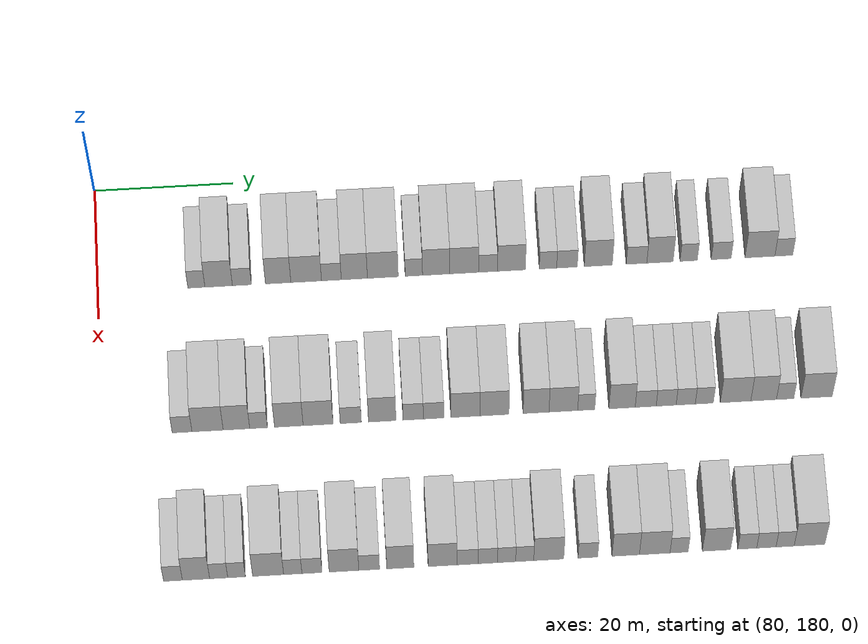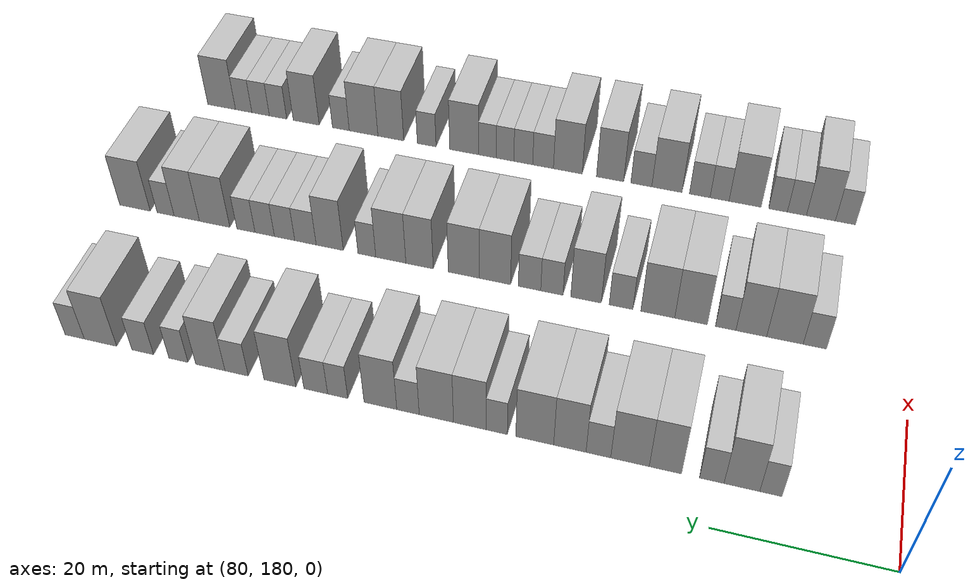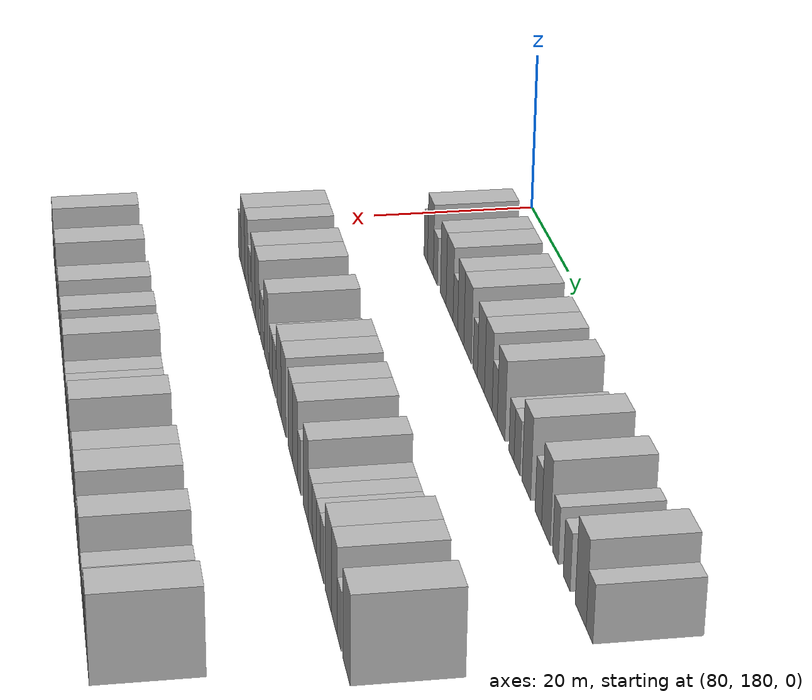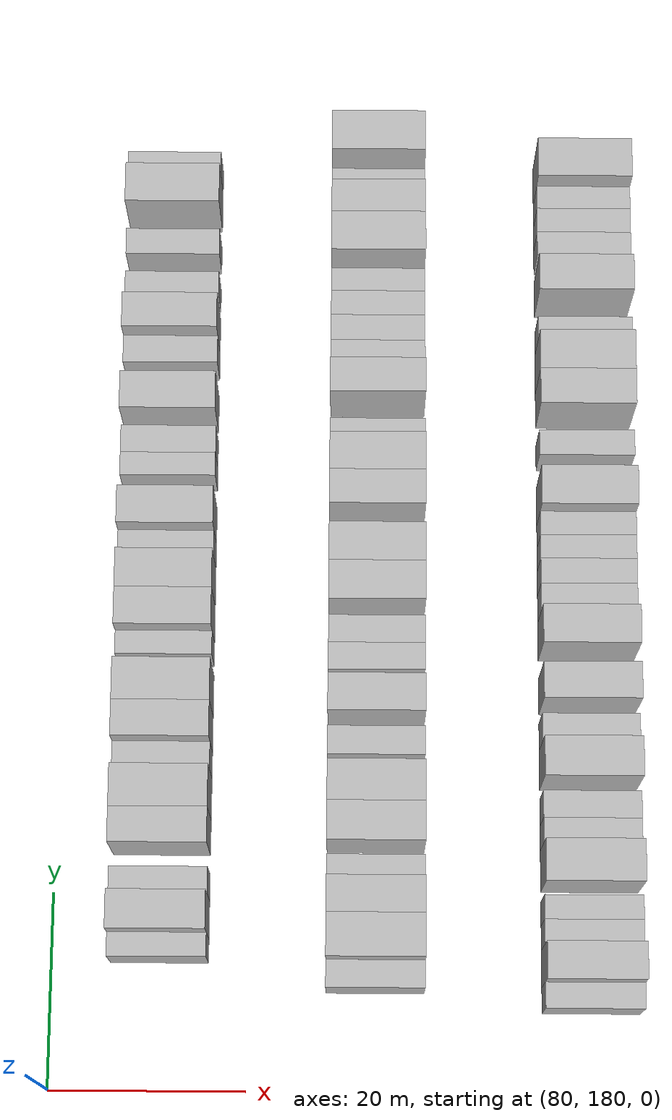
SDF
<sdf version="1.6">
 <world name="default">
  <model name="building_718">
   <static>1</static>
   <pose>91.0000 194.1157 0 0.000000 0.000000 0.000000</pose>
   <link name="link">
    <pose>0 0 3.00 0 0 0</pose>
    <collision name="collision"><geometry><box><size>10.0000 2.4327 6.0000</size></box></geometry></collision>
    <visual name="visual">
     <cast_shadows>0</cast_shadows>
     <geometry><box><size>10.0000 2.4327 6.0000</size></box></geometry>
     <material>
      <script>
       <uri>model://HANNAS_wall/materials/scripts</uri>
       <uri>model://HANNAS_wall/materials/textures</uri>
       <name>vrc/HANNAS_wall</name>
      </script>
     </material>
    </visual>
   </link>
  </model>
  <model name="building_719">
   <static>1</static>
   <pose>91.0000 197.2957 0 0.000000 0.000000 0.000000</pose>
   <link name="link">
    <pose>0 0 4.50 0 0 0</pose>
    <collision name="collision"><geometry><box><size>10.0000 3.9273 9.0000</size></box></geometry></collision>
    <visual name="visual">
     <cast_shadows>0</cast_shadows>
     <geometry><box><size>10.0000 3.9273 9.0000</size></box></geometry>
     <material>
      <script>
       <uri>model://HANNAS_wall/materials/scripts</uri>
       <uri>model://HANNAS_wall/materials/textures</uri>
       <name>vrc/HANNAS_wall</name>
      </script>
     </material>
    </visual>
   </link>
  </model>
  <model name="building_720">
   <static>1</static>
   <pose>91.0000 200.6210 0 0.000000 0.000000 0.000000</pose>
   <link name="link">
    <pose>0 0 3.00 0 0 0</pose>
    <collision name="collision"><geometry><box><size>10.0000 2.7234 6.0000</size></box></geometry></collision>
    <visual name="visual">
     <cast_shadows>0</cast_shadows>
     <geometry><box><size>10.0000 2.7234 6.0000</size></box></geometry>
     <material>
      <script>
       <uri>model://HANNAS_wall/materials/scripts</uri>
       <uri>model://HANNAS_wall/materials/textures</uri>
       <name>vrc/HANNAS_wall</name>
      </script>
     </material>
    </visual>
   </link>
  </model>
  <model name="building_721">
   <static>1</static>
   <pose>91.0000 205.7961 0 0.000000 0.000000 0.000000</pose>
   <link name="link">
    <pose>0 0 4.50 0 0 0</pose>
    <collision name="collision"><geometry><box><size>10.0000 3.6269 9.0000</size></box></geometry></collision>
    <visual name="visual">
     <cast_shadows>0</cast_shadows>
     <geometry><box><size>10.0000 3.6269 9.0000</size></box></geometry>
     <material>
      <script>
       <uri>model://HANNAS_wall/materials/scripts</uri>
       <uri>model://HANNAS_wall/materials/textures</uri>
       <name>vrc/HANNAS_wall</name>
      </script>
     </material>
    </visual>
   </link>
  </model>
  <model name="building_722">
   <static>1</static>
   <pose>91.0000 209.7990 0 0.000000 0.000000 0.000000</pose>
   <link name="link">
    <pose>0 0 4.50 0 0 0</pose>
    <collision name="collision"><geometry><box><size>10.0000 4.3790 9.0000</size></box></geometry></collision>
    <visual name="visual">
     <cast_shadows>0</cast_shadows>
     <geometry><box><size>10.0000 4.3790 9.0000</size></box></geometry>
     <material>
      <script>
       <uri>model://HANNAS_wall/materials/scripts</uri>
       <uri>model://HANNAS_wall/materials/textures</uri>
       <name>vrc/HANNAS_wall</name>
      </script>
     </material>
    </visual>
   </link>
  </model>
  <model name="building_723">
   <static>1</static>
   <pose>91.0000 213.4033 0 0.000000 0.000000 0.000000</pose>
   <link name="link">
    <pose>0 0 3.00 0 0 0</pose>
    <collision name="collision"><geometry><box><size>10.0000 2.8296 6.0000</size></box></geometry></collision>
    <visual name="visual">
     <cast_shadows>0</cast_shadows>
     <geometry><box><size>10.0000 2.8296 6.0000</size></box></geometry>
     <material>
      <script>
       <uri>model://HANNAS_wall/materials/scripts</uri>
       <uri>model://HANNAS_wall/materials/textures</uri>
       <name>vrc/HANNAS_wall</name>
      </script>
     </material>
    </visual>
   </link>
  </model>
  <model name="building_724">
   <static>1</static>
   <pose>91.0000 216.6862 0 0.000000 0.000000 0.000000</pose>
   <link name="link">
    <pose>0 0 4.50 0 0 0</pose>
    <collision name="collision"><geometry><box><size>10.0000 3.7361 9.0000</size></box></geometry></collision>
    <visual name="visual">
     <cast_shadows>0</cast_shadows>
     <geometry><box><size>10.0000 3.7361 9.0000</size></box></geometry>
     <material>
      <script>
       <uri>model://HANNAS_wall/materials/scripts</uri>
       <uri>model://HANNAS_wall/materials/textures</uri>
       <name>vrc/HANNAS_wall</name>
      </script>
     </material>
    </visual>
   </link>
  </model>
  <model name="building_725">
   <static>1</static>
   <pose>91.0000 220.7616 0 0.000000 0.000000 0.000000</pose>
   <link name="link">
    <pose>0 0 4.50 0 0 0</pose>
    <collision name="collision"><geometry><box><size>10.0000 4.4147 9.0000</size></box></geometry></collision>
    <visual name="visual">
     <cast_shadows>0</cast_shadows>
     <geometry><box><size>10.0000 4.4147 9.0000</size></box></geometry>
     <material>
      <script>
       <uri>model://HANNAS_wall/materials/scripts</uri>
       <uri>model://HANNAS_wall/materials/textures</uri>
       <name>vrc/HANNAS_wall</name>
      </script>
     </material>
    </visual>
   </link>
  </model>
  <model name="building_726">
   <static>1</static>
   <pose>91.0000 225.2042 0 0.000000 0.000000 0.000000</pose>
   <link name="link">
    <pose>0 0 3.00 0 0 0</pose>
    <collision name="collision"><geometry><box><size>10.0000 2.4706 6.0000</size></box></geometry></collision>
    <visual name="visual">
     <cast_shadows>0</cast_shadows>
     <geometry><box><size>10.0000 2.4706 6.0000</size></box></geometry>
     <material>
      <script>
       <uri>model://HANNAS_wall/materials/scripts</uri>
       <uri>model://HANNAS_wall/materials/textures</uri>
       <name>vrc/HANNAS_wall</name>
      </script>
     </material>
    </visual>
   </link>
  </model>
  <model name="building_727">
   <static>1</static>
   <pose>91.0000 228.3935 0 0.000000 0.000000 0.000000</pose>
   <link name="link">
    <pose>0 0 4.50 0 0 0</pose>
    <collision name="collision"><geometry><box><size>10.0000 3.9081 9.0000</size></box></geometry></collision>
    <visual name="visual">
     <cast_shadows>0</cast_shadows>
     <geometry><box><size>10.0000 3.9081 9.0000</size></box></geometry>
     <material>
      <script>
       <uri>model://HANNAS_wall/materials/scripts</uri>
       <uri>model://HANNAS_wall/materials/textures</uri>
       <name>vrc/HANNAS_wall</name>
      </script>
     </material>
    </visual>
   </link>
  </model>
  <model name="building_728">
   <static>1</static>
   <pose>91.0000 232.4032 0 0.000000 0.000000 0.000000</pose>
   <link name="link">
    <pose>0 0 4.50 0 0 0</pose>
    <collision name="collision"><geometry><box><size>10.0000 4.1113 9.0000</size></box></geometry></collision>
    <visual name="visual">
     <cast_shadows>0</cast_shadows>
     <geometry><box><size>10.0000 4.1113 9.0000</size></box></geometry>
     <material>
      <script>
       <uri>model://HANNAS_wall/materials/scripts</uri>
       <uri>model://HANNAS_wall/materials/textures</uri>
       <name>vrc/HANNAS_wall</name>
      </script>
     </material>
    </visual>
   </link>
  </model>
  <model name="building_729">
   <static>1</static>
   <pose>91.0000 235.8151 0 0.000000 0.000000 0.000000</pose>
   <link name="link">
    <pose>0 0 3.00 0 0 0</pose>
    <collision name="collision"><geometry><box><size>10.0000 2.7125 6.0000</size></box></geometry></collision>
    <visual name="visual">
     <cast_shadows>0</cast_shadows>
     <geometry><box><size>10.0000 2.7125 6.0000</size></box></geometry>
     <material>
      <script>
       <uri>model://HANNAS_wall/materials/scripts</uri>
       <uri>model://HANNAS_wall/materials/textures</uri>
       <name>vrc/HANNAS_wall</name>
      </script>
     </material>
    </visual>
   </link>
  </model>
  <model name="building_730">
   <static>1</static>
   <pose>91.0000 239.1697 0 0.000000 0.000000 0.000000</pose>
   <link name="link">
    <pose>0 0 4.50 0 0 0</pose>
    <collision name="collision"><geometry><box><size>10.0000 3.9967 9.0000</size></box></geometry></collision>
    <visual name="visual">
     <cast_shadows>0</cast_shadows>
     <geometry><box><size>10.0000 3.9967 9.0000</size></box></geometry>
     <material>
      <script>
       <uri>model://HANNAS_wall/materials/scripts</uri>
       <uri>model://HANNAS_wall/materials/textures</uri>
       <name>vrc/HANNAS_wall</name>
      </script>
     </material>
    </visual>
   </link>
  </model>
  <model name="building_731">
   <static>1</static>
   <pose>91.0000 244.4126 0 0.000000 0.000000 0.000000</pose>
   <link name="link">
    <pose>0 0 3.00 0 0 0</pose>
    <collision name="collision"><geometry><box><size>10.0000 2.4892 6.0000</size></box></geometry></collision>
    <visual name="visual">
     <cast_shadows>0</cast_shadows>
     <geometry><box><size>10.0000 2.4892 6.0000</size></box></geometry>
     <material>
      <script>
       <uri>model://HANNAS_wall/materials/scripts</uri>
       <uri>model://HANNAS_wall/materials/textures</uri>
       <name>vrc/HANNAS_wall</name>
      </script>
     </material>
    </visual>
   </link>
  </model>
  <model name="building_732">
   <static>1</static>
   <pose>91.0000 247.1340 0 0.000000 0.000000 0.000000</pose>
   <link name="link">
    <pose>0 0 3.00 0 0 0</pose>
    <collision name="collision"><geometry><box><size>10.0000 2.9536 6.0000</size></box></geometry></collision>
    <visual name="visual">
     <cast_shadows>0</cast_shadows>
     <geometry><box><size>10.0000 2.9536 6.0000</size></box></geometry>
     <material>
      <script>
       <uri>model://HANNAS_wall/materials/scripts</uri>
       <uri>model://HANNAS_wall/materials/textures</uri>
       <name>vrc/HANNAS_wall</name>
      </script>
     </material>
    </visual>
   </link>
  </model>
  <model name="building_733">
   <static>1</static>
   <pose>91.0000 251.6183 0 0.000000 0.000000 0.000000</pose>
   <link name="link">
    <pose>0 0 4.50 0 0 0</pose>
    <collision name="collision"><geometry><box><size>10.0000 4.0149 9.0000</size></box></geometry></collision>
    <visual name="visual">
     <cast_shadows>0</cast_shadows>
     <geometry><box><size>10.0000 4.0149 9.0000</size></box></geometry>
     <material>
      <script>
       <uri>model://HANNAS_wall/materials/scripts</uri>
       <uri>model://HANNAS_wall/materials/textures</uri>
       <name>vrc/HANNAS_wall</name>
      </script>
     </material>
    </visual>
   </link>
  </model>
  <model name="building_734">
   <static>1</static>
   <pose>91.0000 257.1033 0 0.000000 0.000000 0.000000</pose>
   <link name="link">
    <pose>0 0 3.00 0 0 0</pose>
    <collision name="collision"><geometry><box><size>10.0000 2.9552 6.0000</size></box></geometry></collision>
    <visual name="visual">
     <cast_shadows>0</cast_shadows>
     <geometry><box><size>10.0000 2.9552 6.0000</size></box></geometry>
     <material>
      <script>
       <uri>model://HANNAS_wall/materials/scripts</uri>
       <uri>model://HANNAS_wall/materials/textures</uri>
       <name>vrc/HANNAS_wall</name>
      </script>
     </material>
    </visual>
   </link>
  </model>
  <model name="building_735">
   <static>1</static>
   <pose>91.0000 260.4657 0 0.000000 0.000000 0.000000</pose>
   <link name="link">
    <pose>0 0 4.50 0 0 0</pose>
    <collision name="collision"><geometry><box><size>10.0000 3.7696 9.0000</size></box></geometry></collision>
    <visual name="visual">
     <cast_shadows>0</cast_shadows>
     <geometry><box><size>10.0000 3.7696 9.0000</size></box></geometry>
     <material>
      <script>
       <uri>model://HANNAS_wall/materials/scripts</uri>
       <uri>model://HANNAS_wall/materials/textures</uri>
       <name>vrc/HANNAS_wall</name>
      </script>
     </material>
    </visual>
   </link>
  </model>
  <model name="building_736">
   <static>1</static>
   <pose>91.0000 264.5877 0 0.000000 0.000000 0.000000</pose>
   <link name="link">
    <pose>0 0 3.00 0 0 0</pose>
    <collision name="collision"><geometry><box><size>10.0000 2.4743 6.0000</size></box></geometry></collision>
    <visual name="visual">
     <cast_shadows>0</cast_shadows>
     <geometry><box><size>10.0000 2.4743 6.0000</size></box></geometry>
     <material>
      <script>
       <uri>model://HANNAS_wall/materials/scripts</uri>
       <uri>model://HANNAS_wall/materials/textures</uri>
       <name>vrc/HANNAS_wall</name>
      </script>
     </material>
    </visual>
   </link>
  </model>
  <model name="building_737">
   <static>1</static>
   <pose>91.0000 269.2501 0 0.000000 0.000000 0.000000</pose>
   <link name="link">
    <pose>0 0 3.00 0 0 0</pose>
    <collision name="collision"><geometry><box><size>10.0000 2.8504 6.0000</size></box></geometry></collision>
    <visual name="visual">
     <cast_shadows>0</cast_shadows>
     <geometry><box><size>10.0000 2.8504 6.0000</size></box></geometry>
     <material>
      <script>
       <uri>model://HANNAS_wall/materials/scripts</uri>
       <uri>model://HANNAS_wall/materials/textures</uri>
       <name>vrc/HANNAS_wall</name>
      </script>
     </material>
    </visual>
   </link>
  </model>
  <model name="building_738">
   <static>1</static>
   <pose>91.0000 274.8245 0 0.000000 0.000000 0.000000</pose>
   <link name="link">
    <pose>0 0 4.50 0 0 0</pose>
    <collision name="collision"><geometry><box><size>10.0000 4.2985 9.0000</size></box></geometry></collision>
    <visual name="visual">
     <cast_shadows>0</cast_shadows>
     <geometry><box><size>10.0000 4.2985 9.0000</size></box></geometry>
     <material>
      <script>
       <uri>model://HANNAS_wall/materials/scripts</uri>
       <uri>model://HANNAS_wall/materials/textures</uri>
       <name>vrc/HANNAS_wall</name>
      </script>
     </material>
    </visual>
   </link>
  </model>
  <model name="building_739">
   <static>1</static>
   <pose>91.0000 278.2560 0 0.000000 0.000000 0.000000</pose>
   <link name="link">
    <pose>0 0 3.00 0 0 0</pose>
    <collision name="collision"><geometry><box><size>10.0000 2.5645 6.0000</size></box></geometry></collision>
    <visual name="visual">
     <cast_shadows>0</cast_shadows>
     <geometry><box><size>10.0000 2.5645 6.0000</size></box></geometry>
     <material>
      <script>
       <uri>model://HANNAS_wall/materials/scripts</uri>
       <uri>model://HANNAS_wall/materials/textures</uri>
       <name>vrc/HANNAS_wall</name>
      </script>
     </material>
    </visual>
   </link>
  </model>
  <model name="building_908">
   <static>1</static>
   <pose>113.0000 191.3171 0 0.000000 0.000000 0.000000</pose>
   <link name="link">
    <pose>0 0 3.00 0 0 0</pose>
    <collision name="collision"><geometry><box><size>10.0000 2.7808 6.0000</size></box></geometry></collision>
    <visual name="visual">
     <cast_shadows>0</cast_shadows>
     <geometry><box><size>10.0000 2.7808 6.0000</size></box></geometry>
     <material>
      <script>
       <uri>model://HANNAS_wall/materials/scripts</uri>
       <uri>model://HANNAS_wall/materials/textures</uri>
       <name>vrc/HANNAS_wall</name>
      </script>
     </material>
    </visual>
   </link>
  </model>
  <model name="building_909">
   <static>1</static>
   <pose>113.0000 194.9069 0 0.000000 0.000000 0.000000</pose>
   <link name="link">
    <pose>0 0 4.50 0 0 0</pose>
    <collision name="collision"><geometry><box><size>10.0000 4.3988 9.0000</size></box></geometry></collision>
    <visual name="visual">
     <cast_shadows>0</cast_shadows>
     <geometry><box><size>10.0000 4.3988 9.0000</size></box></geometry>
     <material>
      <script>
       <uri>model://HANNAS_wall/materials/scripts</uri>
       <uri>model://HANNAS_wall/materials/textures</uri>
       <name>vrc/HANNAS_wall</name>
      </script>
     </material>
    </visual>
   </link>
  </model>
  <model name="building_910">
   <static>1</static>
   <pose>113.0000 198.9744 0 0.000000 0.000000 0.000000</pose>
   <link name="link">
    <pose>0 0 4.50 0 0 0</pose>
    <collision name="collision"><geometry><box><size>10.0000 3.7362 9.0000</size></box></geometry></collision>
    <visual name="visual">
     <cast_shadows>0</cast_shadows>
     <geometry><box><size>10.0000 3.7362 9.0000</size></box></geometry>
     <material>
      <script>
       <uri>model://HANNAS_wall/materials/scripts</uri>
       <uri>model://HANNAS_wall/materials/textures</uri>
       <name>vrc/HANNAS_wall</name>
      </script>
     </material>
    </visual>
   </link>
  </model>
  <model name="building_911">
   <static>1</static>
   <pose>113.0000 202.0933 0 0.000000 0.000000 0.000000</pose>
   <link name="link">
    <pose>0 0 3.00 0 0 0</pose>
    <collision name="collision"><geometry><box><size>10.0000 2.5016 6.0000</size></box></geometry></collision>
    <visual name="visual">
     <cast_shadows>0</cast_shadows>
     <geometry><box><size>10.0000 2.5016 6.0000</size></box></geometry>
     <material>
      <script>
       <uri>model://HANNAS_wall/materials/scripts</uri>
       <uri>model://HANNAS_wall/materials/textures</uri>
       <name>vrc/HANNAS_wall</name>
      </script>
     </material>
    </visual>
   </link>
  </model>
  <model name="building_912">
   <static>1</static>
   <pose>113.0000 206.3568 0 0.000000 0.000000 0.000000</pose>
   <link name="link">
    <pose>0 0 4.50 0 0 0</pose>
    <collision name="collision"><geometry><box><size>10.0000 4.0254 9.0000</size></box></geometry></collision>
    <visual name="visual">
     <cast_shadows>0</cast_shadows>
     <geometry><box><size>10.0000 4.0254 9.0000</size></box></geometry>
     <material>
      <script>
       <uri>model://HANNAS_wall/materials/scripts</uri>
       <uri>model://HANNAS_wall/materials/textures</uri>
       <name>vrc/HANNAS_wall</name>
      </script>
     </material>
    </visual>
   </link>
  </model>
  <model name="building_913">
   <static>1</static>
   <pose>113.0000 210.4855 0 0.000000 0.000000 0.000000</pose>
   <link name="link">
    <pose>0 0 4.50 0 0 0</pose>
    <collision name="collision"><geometry><box><size>10.0000 4.2321 9.0000</size></box></geometry></collision>
    <visual name="visual">
     <cast_shadows>0</cast_shadows>
     <geometry><box><size>10.0000 4.2321 9.0000</size></box></geometry>
     <material>
      <script>
       <uri>model://HANNAS_wall/materials/scripts</uri>
       <uri>model://HANNAS_wall/materials/textures</uri>
       <name>vrc/HANNAS_wall</name>
      </script>
     </material>
    </visual>
   </link>
  </model>
  <model name="building_914">
   <static>1</static>
   <pose>113.0000 215.0944 0 0.000000 0.000000 0.000000</pose>
   <link name="link">
    <pose>0 0 3.00 0 0 0</pose>
    <collision name="collision"><geometry><box><size>10.0000 2.9856 6.0000</size></box></geometry></collision>
    <visual name="visual">
     <cast_shadows>0</cast_shadows>
     <geometry><box><size>10.0000 2.9856 6.0000</size></box></geometry>
     <material>
      <script>
       <uri>model://HANNAS_wall/materials/scripts</uri>
       <uri>model://HANNAS_wall/materials/textures</uri>
       <name>vrc/HANNAS_wall</name>
      </script>
     </material>
    </visual>
   </link>
  </model>
  <model name="building_915">
   <static>1</static>
   <pose>113.0000 219.5279 0 0.000000 0.000000 0.000000</pose>
   <link name="link">
    <pose>0 0 4.50 0 0 0</pose>
    <collision name="collision"><geometry><box><size>10.0000 3.8815 9.0000</size></box></geometry></collision>
    <visual name="visual">
     <cast_shadows>0</cast_shadows>
     <geometry><box><size>10.0000 3.8815 9.0000</size></box></geometry>
     <material>
      <script>
       <uri>model://HANNAS_wall/materials/scripts</uri>
       <uri>model://HANNAS_wall/materials/textures</uri>
       <name>vrc/HANNAS_wall</name>
      </script>
     </material>
    </visual>
   </link>
  </model>
  <model name="building_916">
   <static>1</static>
   <pose>113.0000 223.8976 0 0.000000 0.000000 0.000000</pose>
   <link name="link">
    <pose>0 0 3.00 0 0 0</pose>
    <collision name="collision"><geometry><box><size>10.0000 2.8578 6.0000</size></box></geometry></collision>
    <visual name="visual">
     <cast_shadows>0</cast_shadows>
     <geometry><box><size>10.0000 2.8578 6.0000</size></box></geometry>
     <material>
      <script>
       <uri>model://HANNAS_wall/materials/scripts</uri>
       <uri>model://HANNAS_wall/materials/textures</uri>
       <name>vrc/HANNAS_wall</name>
      </script>
     </material>
    </visual>
   </link>
  </model>
  <model name="building_917">
   <static>1</static>
   <pose>113.0000 226.7777 0 0.000000 0.000000 0.000000</pose>
   <link name="link">
    <pose>0 0 3.00 0 0 0</pose>
    <collision name="collision"><geometry><box><size>10.0000 2.9024 6.0000</size></box></geometry></collision>
    <visual name="visual">
     <cast_shadows>0</cast_shadows>
     <geometry><box><size>10.0000 2.9024 6.0000</size></box></geometry>
     <material>
      <script>
       <uri>model://HANNAS_wall/materials/scripts</uri>
       <uri>model://HANNAS_wall/materials/textures</uri>
       <name>vrc/HANNAS_wall</name>
      </script>
     </material>
    </visual>
   </link>
  </model>
  <model name="building_918">
   <static>1</static>
   <pose>113.0000 231.2745 0 0.000000 0.000000 0.000000</pose>
   <link name="link">
    <pose>0 0 4.50 0 0 0</pose>
    <collision name="collision"><geometry><box><size>10.0000 4.0911 9.0000</size></box></geometry></collision>
    <visual name="visual">
     <cast_shadows>0</cast_shadows>
     <geometry><box><size>10.0000 4.0911 9.0000</size></box></geometry>
     <material>
      <script>
       <uri>model://HANNAS_wall/materials/scripts</uri>
       <uri>model://HANNAS_wall/materials/textures</uri>
       <name>vrc/HANNAS_wall</name>
      </script>
     </material>
    </visual>
   </link>
  </model>
  <model name="building_919">
   <static>1</static>
   <pose>113.0000 235.3668 0 0.000000 0.000000 0.000000</pose>
   <link name="link">
    <pose>0 0 4.50 0 0 0</pose>
    <collision name="collision"><geometry><box><size>10.0000 4.0934 9.0000</size></box></geometry></collision>
    <visual name="visual">
     <cast_shadows>0</cast_shadows>
     <geometry><box><size>10.0000 4.0934 9.0000</size></box></geometry>
     <material>
      <script>
       <uri>model://HANNAS_wall/materials/scripts</uri>
       <uri>model://HANNAS_wall/materials/textures</uri>
       <name>vrc/HANNAS_wall</name>
      </script>
     </material>
    </visual>
   </link>
  </model>
  <model name="building_920">
   <static>1</static>
   <pose>113.0000 241.2426 0 0.000000 0.000000 0.000000</pose>
   <link name="link">
    <pose>0 0 4.50 0 0 0</pose>
    <collision name="collision"><geometry><box><size>10.0000 3.6583 9.0000</size></box></geometry></collision>
    <visual name="visual">
     <cast_shadows>0</cast_shadows>
     <geometry><box><size>10.0000 3.6583 9.0000</size></box></geometry>
     <material>
      <script>
       <uri>model://HANNAS_wall/materials/scripts</uri>
       <uri>model://HANNAS_wall/materials/textures</uri>
       <name>vrc/HANNAS_wall</name>
      </script>
     </material>
    </visual>
   </link>
  </model>
  <model name="building_921">
   <static>1</static>
   <pose>113.0000 245.0989 0 0.000000 0.000000 0.000000</pose>
   <link name="link">
    <pose>0 0 4.50 0 0 0</pose>
    <collision name="collision"><geometry><box><size>10.0000 4.0542 9.0000</size></box></geometry></collision>
    <visual name="visual">
     <cast_shadows>0</cast_shadows>
     <geometry><box><size>10.0000 4.0542 9.0000</size></box></geometry>
     <material>
      <script>
       <uri>model://HANNAS_wall/materials/scripts</uri>
       <uri>model://HANNAS_wall/materials/textures</uri>
       <name>vrc/HANNAS_wall</name>
      </script>
     </material>
    </visual>
   </link>
  </model>
  <model name="building_922">
   <static>1</static>
   <pose>113.0000 248.3356 0 0.000000 0.000000 0.000000</pose>
   <link name="link">
    <pose>0 0 3.00 0 0 0</pose>
    <collision name="collision"><geometry><box><size>10.0000 2.4193 6.0000</size></box></geometry></collision>
    <visual name="visual">
     <cast_shadows>0</cast_shadows>
     <geometry><box><size>10.0000 2.4193 6.0000</size></box></geometry>
     <material>
      <script>
       <uri>model://HANNAS_wall/materials/scripts</uri>
       <uri>model://HANNAS_wall/materials/textures</uri>
       <name>vrc/HANNAS_wall</name>
      </script>
     </material>
    </visual>
   </link>
  </model>
  <model name="building_923">
   <static>1</static>
   <pose>113.0000 253.4072 0 0.000000 0.000000 0.000000</pose>
   <link name="link">
    <pose>0 0 4.50 0 0 0</pose>
    <collision name="collision"><geometry><box><size>10.0000 3.7240 9.0000</size></box></geometry></collision>
    <visual name="visual">
     <cast_shadows>0</cast_shadows>
     <geometry><box><size>10.0000 3.7240 9.0000</size></box></geometry>
     <material>
      <script>
       <uri>model://HANNAS_wall/materials/scripts</uri>
       <uri>model://HANNAS_wall/materials/textures</uri>
       <name>vrc/HANNAS_wall</name>
      </script>
     </material>
    </visual>
   </link>
  </model>
  <model name="building_924">
   <static>1</static>
   <pose>113.0000 256.7530 0 0.000000 0.000000 0.000000</pose>
   <link name="link">
    <pose>0 0 3.00 0 0 0</pose>
    <collision name="collision"><geometry><box><size>10.0000 2.9676 6.0000</size></box></geometry></collision>
    <visual name="visual">
     <cast_shadows>0</cast_shadows>
     <geometry><box><size>10.0000 2.9676 6.0000</size></box></geometry>
     <material>
      <script>
       <uri>model://HANNAS_wall/materials/scripts</uri>
       <uri>model://HANNAS_wall/materials/textures</uri>
       <name>vrc/HANNAS_wall</name>
      </script>
     </material>
    </visual>
   </link>
  </model>
  <model name="building_925">
   <static>1</static>
   <pose>113.0000 259.6480 0 0.000000 0.000000 0.000000</pose>
   <link name="link">
    <pose>0 0 3.00 0 0 0</pose>
    <collision name="collision"><geometry><box><size>10.0000 2.8224 6.0000</size></box></geometry></collision>
    <visual name="visual">
     <cast_shadows>0</cast_shadows>
     <geometry><box><size>10.0000 2.8224 6.0000</size></box></geometry>
     <material>
      <script>
       <uri>model://HANNAS_wall/materials/scripts</uri>
       <uri>model://HANNAS_wall/materials/textures</uri>
       <name>vrc/HANNAS_wall</name>
      </script>
     </material>
    </visual>
   </link>
  </model>
  <model name="building_926">
   <static>1</static>
   <pose>113.0000 262.4170 0 0.000000 0.000000 0.000000</pose>
   <link name="link">
    <pose>0 0 3.00 0 0 0</pose>
    <collision name="collision"><geometry><box><size>10.0000 2.7154 6.0000</size></box></geometry></collision>
    <visual name="visual">
     <cast_shadows>0</cast_shadows>
     <geometry><box><size>10.0000 2.7154 6.0000</size></box></geometry>
     <material>
      <script>
       <uri>model://HANNAS_wall/materials/scripts</uri>
       <uri>model://HANNAS_wall/materials/textures</uri>
       <name>vrc/HANNAS_wall</name>
      </script>
     </material>
    </visual>
   </link>
  </model>
  <model name="building_927">
   <static>1</static>
   <pose>113.0000 265.0503 0 0.000000 0.000000 0.000000</pose>
   <link name="link">
    <pose>0 0 3.00 0 0 0</pose>
    <collision name="collision"><geometry><box><size>10.0000 2.5513 6.0000</size></box></geometry></collision>
    <visual name="visual">
     <cast_shadows>0</cast_shadows>
     <geometry><box><size>10.0000 2.5513 6.0000</size></box></geometry>
     <material>
      <script>
       <uri>model://HANNAS_wall/materials/scripts</uri>
       <uri>model://HANNAS_wall/materials/textures</uri>
       <name>vrc/HANNAS_wall</name>
      </script>
     </material>
    </visual>
   </link>
  </model>
  <model name="building_928">
   <static>1</static>
   <pose>113.0000 269.4823 0 0.000000 0.000000 0.000000</pose>
   <link name="link">
    <pose>0 0 4.50 0 0 0</pose>
    <collision name="collision"><geometry><box><size>10.0000 4.3126 9.0000</size></box></geometry></collision>
    <visual name="visual">
     <cast_shadows>0</cast_shadows>
     <geometry><box><size>10.0000 4.3126 9.0000</size></box></geometry>
     <material>
      <script>
       <uri>model://HANNAS_wall/materials/scripts</uri>
       <uri>model://HANNAS_wall/materials/textures</uri>
       <name>vrc/HANNAS_wall</name>
      </script>
     </material>
    </visual>
   </link>
  </model>
  <model name="building_929">
   <static>1</static>
   <pose>113.0000 273.4539 0 0.000000 0.000000 0.000000</pose>
   <link name="link">
    <pose>0 0 4.50 0 0 0</pose>
    <collision name="collision"><geometry><box><size>10.0000 3.6307 9.0000</size></box></geometry></collision>
    <visual name="visual">
     <cast_shadows>0</cast_shadows>
     <geometry><box><size>10.0000 3.6307 9.0000</size></box></geometry>
     <material>
      <script>
       <uri>model://HANNAS_wall/materials/scripts</uri>
       <uri>model://HANNAS_wall/materials/textures</uri>
       <name>vrc/HANNAS_wall</name>
      </script>
     </material>
    </visual>
   </link>
  </model>
  <model name="building_930">
   <static>1</static>
   <pose>113.0000 276.5021 0 0.000000 0.000000 0.000000</pose>
   <link name="link">
    <pose>0 0 3.00 0 0 0</pose>
    <collision name="collision"><geometry><box><size>10.0000 2.4656 6.0000</size></box></geometry></collision>
    <visual name="visual">
     <cast_shadows>0</cast_shadows>
     <geometry><box><size>10.0000 2.4656 6.0000</size></box></geometry>
     <material>
      <script>
       <uri>model://HANNAS_wall/materials/scripts</uri>
       <uri>model://HANNAS_wall/materials/textures</uri>
       <name>vrc/HANNAS_wall</name>
      </script>
     </material>
    </visual>
   </link>
  </model>
  <model name="building_931">
   <static>1</static>
   <pose>113.0000 280.9494 0 0.000000 0.000000 0.000000</pose>
   <link name="link">
    <pose>0 0 4.50 0 0 0</pose>
    <collision name="collision"><geometry><box><size>10.0000 4.4290 9.0000</size></box></geometry></collision>
    <visual name="visual">
     <cast_shadows>0</cast_shadows>
     <geometry><box><size>10.0000 4.4290 9.0000</size></box></geometry>
     <material>
      <script>
       <uri>model://HANNAS_wall/materials/scripts</uri>
       <uri>model://HANNAS_wall/materials/textures</uri>
       <name>vrc/HANNAS_wall</name>
      </script>
     </material>
    </visual>
   </link>
  </model>
  <model name="building_1096">
   <static>1</static>
   <pose>135.0000 189.2941 0 0.000000 0.000000 0.000000</pose>
   <link name="link">
    <pose>0 0 3.00 0 0 0</pose>
    <collision name="collision"><geometry><box><size>10.0000 2.6110 6.0000</size></box></geometry></collision>
    <visual name="visual">
     <cast_shadows>0</cast_shadows>
     <geometry><box><size>10.0000 2.6110 6.0000</size></box></geometry>
     <material>
      <script>
       <uri>model://HANNAS_wall/materials/scripts</uri>
       <uri>model://HANNAS_wall/materials/textures</uri>
       <name>vrc/HANNAS_wall</name>
      </script>
     </material>
    </visual>
   </link>
  </model>
  <model name="building_1097">
   <static>1</static>
   <pose>135.0000 192.4915 0 0.000000 0.000000 0.000000</pose>
   <link name="link">
    <pose>0 0 4.50 0 0 0</pose>
    <collision name="collision"><geometry><box><size>10.0000 3.7838 9.0000</size></box></geometry></collision>
    <visual name="visual">
     <cast_shadows>0</cast_shadows>
     <geometry><box><size>10.0000 3.7838 9.0000</size></box></geometry>
     <material>
      <script>
       <uri>model://HANNAS_wall/materials/scripts</uri>
       <uri>model://HANNAS_wall/materials/textures</uri>
       <name>vrc/HANNAS_wall</name>
      </script>
     </material>
    </visual>
   </link>
  </model>
  <model name="building_1098">
   <static>1</static>
   <pose>135.0000 195.6387 0 0.000000 0.000000 0.000000</pose>
   <link name="link">
    <pose>0 0 3.00 0 0 0</pose>
    <collision name="collision"><geometry><box><size>10.0000 2.5106 6.0000</size></box></geometry></collision>
    <visual name="visual">
     <cast_shadows>0</cast_shadows>
     <geometry><box><size>10.0000 2.5106 6.0000</size></box></geometry>
     <material>
      <script>
       <uri>model://HANNAS_wall/materials/scripts</uri>
       <uri>model://HANNAS_wall/materials/textures</uri>
       <name>vrc/HANNAS_wall</name>
      </script>
     </material>
    </visual>
   </link>
  </model>
  <model name="building_1099">
   <static>1</static>
   <pose>135.0000 198.1287 0 0.000000 0.000000 0.000000</pose>
   <link name="link">
    <pose>0 0 3.00 0 0 0</pose>
    <collision name="collision"><geometry><box><size>10.0000 2.4695 6.0000</size></box></geometry></collision>
    <visual name="visual">
     <cast_shadows>0</cast_shadows>
     <geometry><box><size>10.0000 2.4695 6.0000</size></box></geometry>
     <material>
      <script>
       <uri>model://HANNAS_wall/materials/scripts</uri>
       <uri>model://HANNAS_wall/materials/textures</uri>
       <name>vrc/HANNAS_wall</name>
      </script>
     </material>
    </visual>
   </link>
  </model>
  <model name="building_1100">
   <static>1</static>
   <pose>135.0000 202.5121 0 0.000000 0.000000 0.000000</pose>
   <link name="link">
    <pose>0 0 4.50 0 0 0</pose>
    <collision name="collision"><geometry><box><size>10.0000 4.2974 9.0000</size></box></geometry></collision>
    <visual name="visual">
     <cast_shadows>0</cast_shadows>
     <geometry><box><size>10.0000 4.2974 9.0000</size></box></geometry>
     <material>
      <script>
       <uri>model://HANNAS_wall/materials/scripts</uri>
       <uri>model://HANNAS_wall/materials/textures</uri>
       <name>vrc/HANNAS_wall</name>
      </script>
     </material>
    </visual>
   </link>
  </model>
  <model name="building_1101">
   <static>1</static>
   <pose>135.0000 205.9325 0 0.000000 0.000000 0.000000</pose>
   <link name="link">
    <pose>0 0 3.00 0 0 0</pose>
    <collision name="collision"><geometry><box><size>10.0000 2.5434 6.0000</size></box></geometry></collision>
    <visual name="visual">
     <cast_shadows>0</cast_shadows>
     <geometry><box><size>10.0000 2.5434 6.0000</size></box></geometry>
     <material>
      <script>
       <uri>model://HANNAS_wall/materials/scripts</uri>
       <uri>model://HANNAS_wall/materials/textures</uri>
       <name>vrc/HANNAS_wall</name>
      </script>
     </material>
    </visual>
   </link>
  </model>
  <model name="building_1102">
   <static>1</static>
   <pose>135.0000 208.6035 0 0.000000 0.000000 0.000000</pose>
   <link name="link">
    <pose>0 0 3.00 0 0 0</pose>
    <collision name="collision"><geometry><box><size>10.0000 2.7988 6.0000</size></box></geometry></collision>
    <visual name="visual">
     <cast_shadows>0</cast_shadows>
     <geometry><box><size>10.0000 2.7988 6.0000</size></box></geometry>
     <material>
      <script>
       <uri>model://HANNAS_wall/materials/scripts</uri>
       <uri>model://HANNAS_wall/materials/textures</uri>
       <name>vrc/HANNAS_wall</name>
      </script>
     </material>
    </visual>
   </link>
  </model>
  <model name="building_1103">
   <static>1</static>
   <pose>135.0000 213.0642 0 0.000000 0.000000 0.000000</pose>
   <link name="link">
    <pose>0 0 4.50 0 0 0</pose>
    <collision name="collision"><geometry><box><size>10.0000 4.1225 9.0000</size></box></geometry></collision>
    <visual name="visual">
     <cast_shadows>0</cast_shadows>
     <geometry><box><size>10.0000 4.1225 9.0000</size></box></geometry>
     <material>
      <script>
       <uri>model://HANNAS_wall/materials/scripts</uri>
       <uri>model://HANNAS_wall/materials/textures</uri>
       <name>vrc/HANNAS_wall</name>
      </script>
     </material>
    </visual>
   </link>
  </model>
  <model name="building_1104">
   <static>1</static>
   <pose>135.0000 216.5668 0 0.000000 0.000000 0.000000</pose>
   <link name="link">
    <pose>0 0 3.00 0 0 0</pose>
    <collision name="collision"><geometry><box><size>10.0000 2.8828 6.0000</size></box></geometry></collision>
    <visual name="visual">
     <cast_shadows>0</cast_shadows>
     <geometry><box><size>10.0000 2.8828 6.0000</size></box></geometry>
     <material>
      <script>
       <uri>model://HANNAS_wall/materials/scripts</uri>
       <uri>model://HANNAS_wall/materials/textures</uri>
       <name>vrc/HANNAS_wall</name>
      </script>
     </material>
    </visual>
   </link>
  </model>
  <model name="building_1105">
   <static>1</static>
   <pose>135.0000 220.8903 0 0.000000 0.000000 0.000000</pose>
   <link name="link">
    <pose>0 0 4.50 0 0 0</pose>
    <collision name="collision"><geometry><box><size>10.0000 3.7642 9.0000</size></box></geometry></collision>
    <visual name="visual">
     <cast_shadows>0</cast_shadows>
     <geometry><box><size>10.0000 3.7642 9.0000</size></box></geometry>
     <material>
      <script>
       <uri>model://HANNAS_wall/materials/scripts</uri>
       <uri>model://HANNAS_wall/materials/textures</uri>
       <name>vrc/HANNAS_wall</name>
      </script>
     </material>
    </visual>
   </link>
  </model>
  <model name="building_1106">
   <static>1</static>
   <pose>135.0000 226.7918 0 0.000000 0.000000 0.000000</pose>
   <link name="link">
    <pose>0 0 4.50 0 0 0</pose>
    <collision name="collision"><geometry><box><size>10.0000 4.0387 9.0000</size></box></geometry></collision>
    <visual name="visual">
     <cast_shadows>0</cast_shadows>
     <geometry><box><size>10.0000 4.0387 9.0000</size></box></geometry>
     <material>
      <script>
       <uri>model://HANNAS_wall/materials/scripts</uri>
       <uri>model://HANNAS_wall/materials/textures</uri>
       <name>vrc/HANNAS_wall</name>
      </script>
     </material>
    </visual>
   </link>
  </model>
  <model name="building_1107">
   <static>1</static>
   <pose>135.0000 230.2769 0 0.000000 0.000000 0.000000</pose>
   <link name="link">
    <pose>0 0 3.00 0 0 0</pose>
    <collision name="collision"><geometry><box><size>10.0000 2.9314 6.0000</size></box></geometry></collision>
    <visual name="visual">
     <cast_shadows>0</cast_shadows>
     <geometry><box><size>10.0000 2.9314 6.0000</size></box></geometry>
     <material>
      <script>
       <uri>model://HANNAS_wall/materials/scripts</uri>
       <uri>model://HANNAS_wall/materials/textures</uri>
       <name>vrc/HANNAS_wall</name>
      </script>
     </material>
    </visual>
   </link>
  </model>
  <model name="building_1108">
   <static>1</static>
   <pose>135.0000 233.0854 0 0.000000 0.000000 0.000000</pose>
   <link name="link">
    <pose>0 0 3.00 0 0 0</pose>
    <collision name="collision"><geometry><box><size>10.0000 2.6855 6.0000</size></box></geometry></collision>
    <visual name="visual">
     <cast_shadows>0</cast_shadows>
     <geometry><box><size>10.0000 2.6855 6.0000</size></box></geometry>
     <material>
      <script>
       <uri>model://HANNAS_wall/materials/scripts</uri>
       <uri>model://HANNAS_wall/materials/textures</uri>
       <name>vrc/HANNAS_wall</name>
      </script>
     </material>
    </visual>
   </link>
  </model>
  <model name="building_1109">
   <static>1</static>
   <pose>135.0000 235.6915 0 0.000000 0.000000 0.000000</pose>
   <link name="link">
    <pose>0 0 3.00 0 0 0</pose>
    <collision name="collision"><geometry><box><size>10.0000 2.5268 6.0000</size></box></geometry></collision>
    <visual name="visual">
     <cast_shadows>0</cast_shadows>
     <geometry><box><size>10.0000 2.5268 6.0000</size></box></geometry>
     <material>
      <script>
       <uri>model://HANNAS_wall/materials/scripts</uri>
       <uri>model://HANNAS_wall/materials/textures</uri>
       <name>vrc/HANNAS_wall</name>
      </script>
     </material>
    </visual>
   </link>
  </model>
  <model name="building_1110">
   <static>1</static>
   <pose>135.0000 238.2129 0 0.000000 0.000000 0.000000</pose>
   <link name="link">
    <pose>0 0 3.00 0 0 0</pose>
    <collision name="collision"><geometry><box><size>10.0000 2.5160 6.0000</size></box></geometry></collision>
    <visual name="visual">
     <cast_shadows>0</cast_shadows>
     <geometry><box><size>10.0000 2.5160 6.0000</size></box></geometry>
     <material>
      <script>
       <uri>model://HANNAS_wall/materials/scripts</uri>
       <uri>model://HANNAS_wall/materials/textures</uri>
       <name>vrc/HANNAS_wall</name>
      </script>
     </material>
    </visual>
   </link>
  </model>
  <model name="building_1111">
   <static>1</static>
   <pose>135.0000 241.5584 0 0.000000 0.000000 0.000000</pose>
   <link name="link">
    <pose>0 0 4.50 0 0 0</pose>
    <collision name="collision"><geometry><box><size>10.0000 4.1750 9.0000</size></box></geometry></collision>
    <visual name="visual">
     <cast_shadows>0</cast_shadows>
     <geometry><box><size>10.0000 4.1750 9.0000</size></box></geometry>
     <material>
      <script>
       <uri>model://HANNAS_wall/materials/scripts</uri>
       <uri>model://HANNAS_wall/materials/textures</uri>
       <name>vrc/HANNAS_wall</name>
      </script>
     </material>
    </visual>
   </link>
  </model>
  <model name="building_1112">
   <static>1</static>
   <pose>135.0000 247.0154 0 0.000000 0.000000 0.000000</pose>
   <link name="link">
    <pose>0 0 3.00 0 0 0</pose>
    <collision name="collision"><geometry><box><size>10.0000 2.7390 6.0000</size></box></geometry></collision>
    <visual name="visual">
     <cast_shadows>0</cast_shadows>
     <geometry><box><size>10.0000 2.7390 6.0000</size></box></geometry>
     <material>
      <script>
       <uri>model://HANNAS_wall/materials/scripts</uri>
       <uri>model://HANNAS_wall/materials/textures</uri>
       <name>vrc/HANNAS_wall</name>
      </script>
     </material>
    </visual>
   </link>
  </model>
  <model name="building_1113">
   <static>1</static>
   <pose>135.0000 252.2958 0 0.000000 0.000000 0.000000</pose>
   <link name="link">
    <pose>0 0 4.50 0 0 0</pose>
    <collision name="collision"><geometry><box><size>10.0000 3.8218 9.0000</size></box></geometry></collision>
    <visual name="visual">
     <cast_shadows>0</cast_shadows>
     <geometry><box><size>10.0000 3.8218 9.0000</size></box></geometry>
     <material>
      <script>
       <uri>model://HANNAS_wall/materials/scripts</uri>
       <uri>model://HANNAS_wall/materials/textures</uri>
       <name>vrc/HANNAS_wall</name>
      </script>
     </material>
    </visual>
   </link>
  </model>
  <model name="building_1114">
   <static>1</static>
   <pose>135.0000 256.3410 0 0.000000 0.000000 0.000000</pose>
   <link name="link">
    <pose>0 0 4.50 0 0 0</pose>
    <collision name="collision"><geometry><box><size>10.0000 4.2688 9.0000</size></box></geometry></collision>
    <visual name="visual">
     <cast_shadows>0</cast_shadows>
     <geometry><box><size>10.0000 4.2688 9.0000</size></box></geometry>
     <material>
      <script>
       <uri>model://HANNAS_wall/materials/scripts</uri>
       <uri>model://HANNAS_wall/materials/textures</uri>
       <name>vrc/HANNAS_wall</name>
      </script>
     </material>
    </visual>
   </link>
  </model>
  <model name="building_1115">
   <static>1</static>
   <pose>135.0000 259.7381 0 0.000000 0.000000 0.000000</pose>
   <link name="link">
    <pose>0 0 3.00 0 0 0</pose>
    <collision name="collision"><geometry><box><size>10.0000 2.5253 6.0000</size></box></geometry></collision>
    <visual name="visual">
     <cast_shadows>0</cast_shadows>
     <geometry><box><size>10.0000 2.5253 6.0000</size></box></geometry>
     <material>
      <script>
       <uri>model://HANNAS_wall/materials/scripts</uri>
       <uri>model://HANNAS_wall/materials/textures</uri>
       <name>vrc/HANNAS_wall</name>
      </script>
     </material>
    </visual>
   </link>
  </model>
  <model name="building_1116">
   <static>1</static>
   <pose>135.0000 264.9690 0 0.000000 0.000000 0.000000</pose>
   <link name="link">
    <pose>0 0 4.50 0 0 0</pose>
    <collision name="collision"><geometry><box><size>10.0000 3.9364 9.0000</size></box></geometry></collision>
    <visual name="visual">
     <cast_shadows>0</cast_shadows>
     <geometry><box><size>10.0000 3.9364 9.0000</size></box></geometry>
     <material>
      <script>
       <uri>model://HANNAS_wall/materials/scripts</uri>
       <uri>model://HANNAS_wall/materials/textures</uri>
       <name>vrc/HANNAS_wall</name>
      </script>
     </material>
    </visual>
   </link>
  </model>
  <model name="building_1117">
   <static>1</static>
   <pose>135.0000 269.2626 0 0.000000 0.000000 0.000000</pose>
   <link name="link">
    <pose>0 0 3.00 0 0 0</pose>
    <collision name="collision"><geometry><box><size>10.0000 2.6508 6.0000</size></box></geometry></collision>
    <visual name="visual">
     <cast_shadows>0</cast_shadows>
     <geometry><box><size>10.0000 2.6508 6.0000</size></box></geometry>
     <material>
      <script>
       <uri>model://HANNAS_wall/materials/scripts</uri>
       <uri>model://HANNAS_wall/materials/textures</uri>
       <name>vrc/HANNAS_wall</name>
      </script>
     </material>
    </visual>
   </link>
  </model>
  <model name="building_1118">
   <static>1</static>
   <pose>135.0000 271.9331 0 0.000000 0.000000 0.000000</pose>
   <link name="link">
    <pose>0 0 3.00 0 0 0</pose>
    <collision name="collision"><geometry><box><size>10.0000 2.6901 6.0000</size></box></geometry></collision>
    <visual name="visual">
     <cast_shadows>0</cast_shadows>
     <geometry><box><size>10.0000 2.6901 6.0000</size></box></geometry>
     <material>
      <script>
       <uri>model://HANNAS_wall/materials/scripts</uri>
       <uri>model://HANNAS_wall/materials/textures</uri>
       <name>vrc/HANNAS_wall</name>
      </script>
     </material>
    </visual>
   </link>
  </model>
  <model name="building_1119">
   <static>1</static>
   <pose>135.0000 274.5454 0 0.000000 0.000000 0.000000</pose>
   <link name="link">
    <pose>0 0 3.00 0 0 0</pose>
    <collision name="collision"><geometry><box><size>10.0000 2.5346 6.0000</size></box></geometry></collision>
    <visual name="visual">
     <cast_shadows>0</cast_shadows>
     <geometry><box><size>10.0000 2.5346 6.0000</size></box></geometry>
     <material>
      <script>
       <uri>model://HANNAS_wall/materials/scripts</uri>
       <uri>model://HANNAS_wall/materials/textures</uri>
       <name>vrc/HANNAS_wall</name>
      </script>
     </material>
    </visual>
   </link>
  </model>
  <model name="building_1120">
   <static>1</static>
   <pose>135.0000 277.9578 0 0.000000 0.000000 0.000000</pose>
   <link name="link">
    <pose>0 0 4.50 0 0 0</pose>
    <collision name="collision"><geometry><box><size>10.0000 4.2902 9.0000</size></box></geometry></collision>
    <visual name="visual">
     <cast_shadows>0</cast_shadows>
     <geometry><box><size>10.0000 4.2902 9.0000</size></box></geometry>
     <material>
      <script>
       <uri>model://HANNAS_wall/materials/scripts</uri>
       <uri>model://HANNAS_wall/materials/textures</uri>
       <name>vrc/HANNAS_wall</name>
      </script>
     </material>
    </visual>
   </link>
  </model>
 </world>
</sdf>
